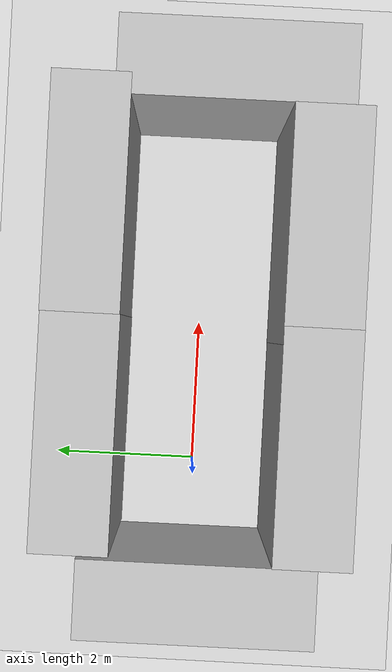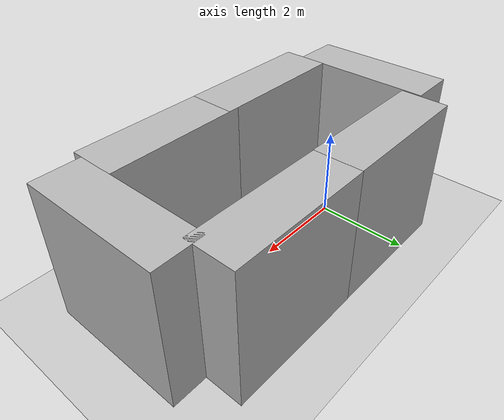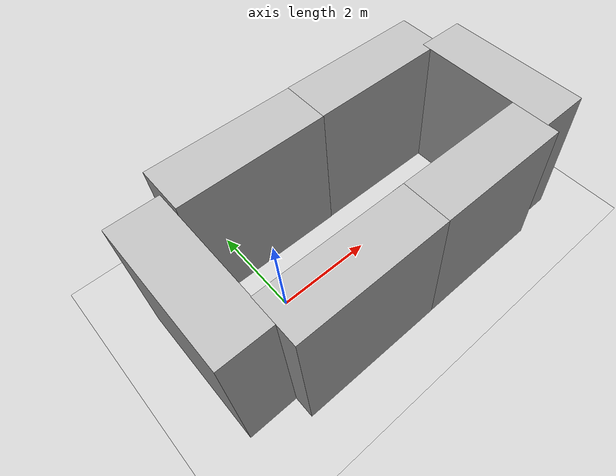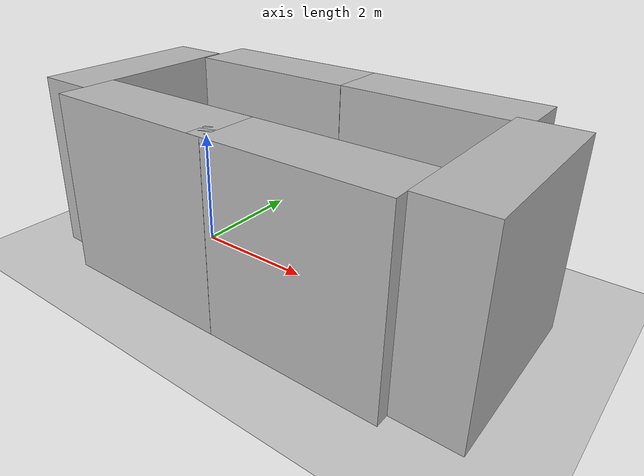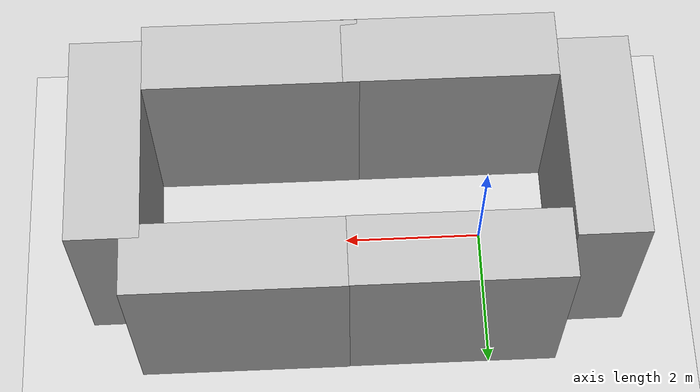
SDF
<sdf version="1.6">
 <world name="default">
  <light name="sun" type="directional">
   <pose>0 0 10 0 -0 0</pose>
   <diffuse>0.8 0.8 0.8 1</diffuse>
   <specular>0.2 0.2 0.2 1</specular>
   <attenuation>
    <range>1000</range>
    <constant>0.9</constant>
    <linear>0.01</linear>
    <quadratic>0.001</quadratic>
   </attenuation>
   <direction>-0.5 0.1 -0.9</direction>
  </light>
  <model name="ground_plane">
   <static>1</static>
   <link name="link">
    <collision name="collision">
     <geometry><plane><normal>0 0 1</normal><size>100 100</size></plane></geometry>
     <surface><friction><ode><mu>100</mu><mu2>50</mu2></ode></friction></surface>
    </collision>
    <visual name="visual">
     <cast_shadows>0</cast_shadows>
     <geometry><plane><normal>0 0 1</normal><size>100 100</size></plane></geometry>
     <material>
      <script><uri>file://media/materials/scripts/gazebo.material</uri><name>Gazebo/Grey</name></script>
     </material>
    </visual>
   </link>
  </model>
  <gravity>0 0 -9.8</gravity>
  <magnetic_field>6e-06 2.3e-05 -4.2e-05</magnetic_field>
  <atmosphere type="adiabatic"/>
  <physics name="default_physics" default="0" type="ode">
   <max_step_size>0.001</max_step_size>
   <real_time_factor>1</real_time_factor>
   <real_time_update_rate>1000</real_time_update_rate>
  </physics>
  <scene><ambient>0.4 0.4 0.4 1</ambient><background>0.7 0.7 0.7 1</background><shadows>1</shadows></scene>
  <spherical_coordinates>
   <surface_model>EARTH_WGS84</surface_model>
   <latitude_deg>0</latitude_deg>
   <longitude_deg>0</longitude_deg>
   <elevation>0</elevation>
   <heading_deg>0</heading_deg>
  </spherical_coordinates>
  <model name="brick_box_3x1x3">
   <static>1</static>
   <link name="chassis">
    <pose>0 0 1.5 0 -0 0</pose>
    <collision name="collision"><geometry><box><size>3 1 3</size></box></geometry></collision>
    <visual name="visual">
     <geometry><mesh><uri>model://brick_box_3x1x3/meshes/simple_box.dae</uri><scale>3 1 3</scale></mesh></geometry>
     <material>
      <script>
       <uri>model://brick_box_3x1x3/materials/scripts</uri>
       <uri>model://brick_box_3x1x3/materials/textures</uri>
       <name>BrickBox/Diffuse</name>
      </script>
     </material>
    </visual>
   </link>
   <pose>0.491373 -1.52439 0 0 -0 0</pose>
  </model>
  <model name="brick_box_3x1x3_clone">
   <static>1</static>
   <link name="chassis">
    <pose>0 0 1.5 0 -0 0</pose>
    <collision name="collision"><geometry><box><size>3 1 3</size></box></geometry></collision>
    <visual name="visual">
     <geometry><mesh><uri>model://brick_box_3x1x3/meshes/simple_box.dae</uri><scale>3 1 3</scale></mesh></geometry>
     <material>
      <script>
       <uri>model://brick_box_3x1x3/materials/scripts</uri>
       <uri>model://brick_box_3x1x3/materials/textures</uri>
       <name>BrickBox/Diffuse</name>
      </script>
     </material>
    </visual>
   </link>
   <pose>3.25972 -1.52228 0 0 -0 0</pose>
  </model>
  <model name="brick_box_3x1x3_clone_0">
   <static>1</static>
   <link name="chassis">
    <pose>0 0 1.5 0 -0 0</pose>
    <collision name="collision"><geometry><box><size>3 1 3</size></box></geometry></collision>
    <visual name="visual">
     <geometry><mesh><uri>model://brick_box_3x1x3/meshes/simple_box.dae</uri><scale>3 1 3</scale></mesh></geometry>
     <material>
      <script>
       <uri>model://brick_box_3x1x3/materials/scripts</uri>
       <uri>model://brick_box_3x1x3/materials/textures</uri>
       <name>BrickBox/Diffuse</name>
      </script>
     </material>
    </visual>
   </link>
   <pose>0.529856 1.49993 0 0 -0 0</pose>
  </model>
  <model name="brick_box_3x1x3_clone_1">
   <static>1</static>
   <link name="chassis">
    <pose>0 0 1.5 0 -0 0</pose>
    <collision name="collision"><geometry><box><size>3 1 3</size></box></geometry></collision>
    <visual name="visual">
     <geometry><mesh><uri>model://brick_box_3x1x3/meshes/simple_box.dae</uri><scale>3 1 3</scale></mesh></geometry>
     <material>
      <script>
       <uri>model://brick_box_3x1x3/materials/scripts</uri>
       <uri>model://brick_box_3x1x3/materials/textures</uri>
       <name>BrickBox/Diffuse</name>
      </script>
     </material>
    </visual>
   </link>
   <pose>3.52039 1.50688 0 0 -0 0</pose>
  </model>
  <model name="brick_box_3x1x3_clone_2">
   <static>1</static>
   <link name="chassis">
    <pose>0 0 1.5 0 -0 0</pose>
    <collision name="collision"><geometry><box><size>3 1 3</size></box></geometry></collision>
    <visual name="visual">
     <geometry><mesh><uri>model://brick_box_3x1x3/meshes/simple_box.dae</uri><scale>3 1 3</scale></mesh></geometry>
     <material>
      <script>
       <uri>model://brick_box_3x1x3/materials/scripts</uri>
       <uri>model://brick_box_3x1x3/materials/textures</uri>
       <name>BrickBox/Diffuse</name>
      </script>
     </material>
    </visual>
   </link>
   <pose>-1.50229 -0.09569 0 0 0 -1.56835</pose>
  </model>
  <model name="brick_box_3x1x3_clone_2_clone">
   <static>1</static>
   <link name="chassis">
    <pose>0 0 1.5 0 -0 0</pose>
    <collision name="collision"><geometry><box><size>3 1 3</size></box></geometry></collision>
    <visual name="visual">
     <geometry><mesh><uri>model://brick_box_3x1x3/meshes/simple_box.dae</uri><scale>3 1 3</scale></mesh></geometry>
     <material>
      <script>
       <uri>model://brick_box_3x1x3/materials/scripts</uri>
       <uri>model://brick_box_3x1x3/materials/textures</uri>
       <name>BrickBox/Diffuse</name>
      </script>
     </material>
    </visual>
   </link>
   <pose>5.25052 -0.2949 0 0 0 -1.56835</pose>
  </model>
 </world>
</sdf>
